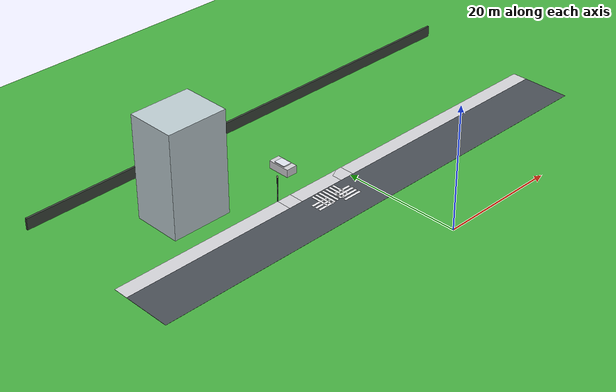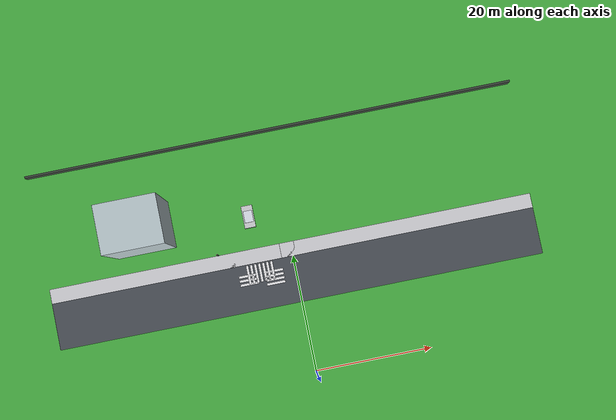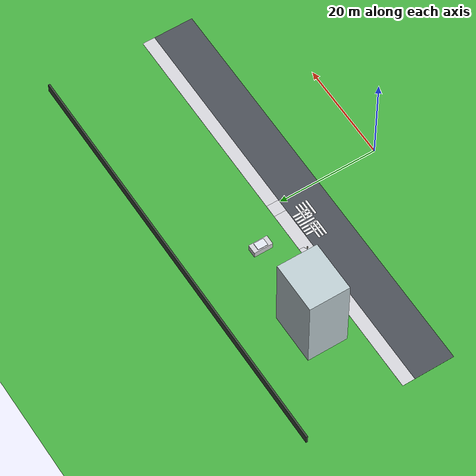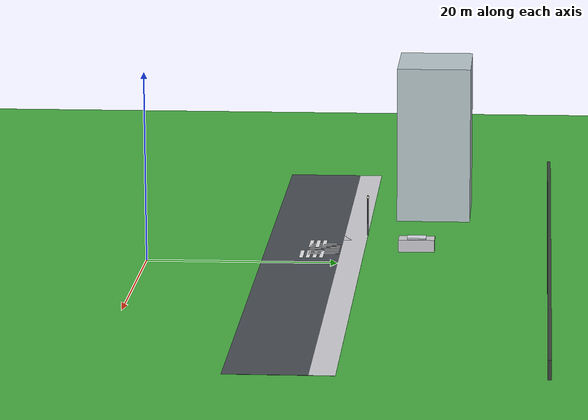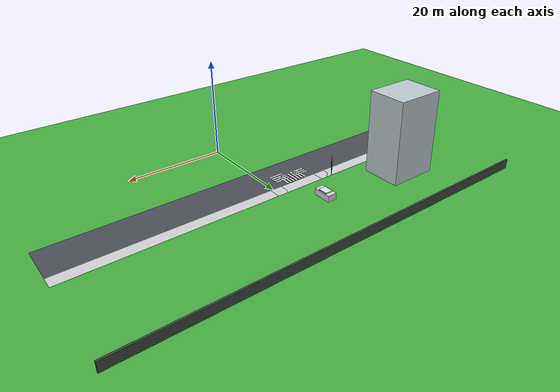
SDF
<sdf version="1.9">
 <world name="city_second">
  <model name="ground_plane">
   <static>true</static>
   <link name="link">
    <collision name="collision">
     <geometry><plane><normal>0 0 1</normal><size>300 300</size></plane></geometry>
    </collision>
    <visual name="visual">
     <geometry><plane><normal>0 0 1</normal><size>300 300</size></plane></geometry>
     <material>
      <ambient>0.28 0.69 0.26 1</ambient>
      <diffuse>0.28 0.69 0.26 1</diffuse>
      <specular>0.03 0.03 0.03 1</specular>
     </material>
    </visual>
   </link>
  </model>
  <model name="road_h_2">
   <static>true</static>
   <pose>0 16.0 0.01 0 0 0.0</pose>
   <link name="link">
    <collision name="collision"><geometry><box><size>84 8.0 0.02</size></box></geometry></collision>
    <visual name="visual">
     <geometry><box><size>84 8.0 0.02</size></box></geometry>
     <material>
      <ambient>0.29 0.31 0.34 1</ambient>
      <diffuse>0.29 0.31 0.34 1</diffuse>
      <specular>0.03 0.03 0.03 1</specular>
     </material>
    </visual>
   </link>
  </model>
  <model name="sidewalk_h_2_north">
   <static>true</static>
   <pose>0 21.25 0.015 0 0 0.0</pose>
   <link name="link">
    <collision name="collision"><geometry><box><size>84 2.5 0.02</size></box></geometry></collision>
    <visual name="visual">
     <geometry><box><size>84 2.5 0.02</size></box></geometry>
     <material>
      <ambient>0.83 0.83 0.85 1</ambient>
      <diffuse>0.83 0.83 0.85 1</diffuse>
      <specular>0.03 0.03 0.03 1</specular>
     </material>
    </visual>
   </link>
  </model>
  <model name="corner_sidewalk_1_2_2">
   <static>true</static>
   <pose>-11.25 21.25 0.015 0 0 0.0</pose>
   <link name="link">
    <collision name="collision"><geometry><box><size>2.5 2.5 0.02</size></box></geometry></collision>
    <visual name="visual">
     <geometry><box><size>2.5 2.5 0.02</size></box></geometry>
     <material>
      <ambient>0.83 0.83 0.85 1</ambient>
      <diffuse>0.83 0.83 0.85 1</diffuse>
      <specular>0.03 0.03 0.03 1</specular>
     </material>
    </visual>
   </link>
  </model>
  <model name="corner_sidewalk_1_2_4">
   <static>true</static>
   <pose>-0.75 21.25 0.015 0 0 0.0</pose>
   <link name="link">
    <collision name="collision"><geometry><box><size>2.5 2.5 0.02</size></box></geometry></collision>
    <visual name="visual">
     <geometry><box><size>2.5 2.5 0.02</size></box></geometry>
     <material>
      <ambient>0.83 0.83 0.85 1</ambient>
      <diffuse>0.83 0.83 0.85 1</diffuse>
      <specular>0.03 0.03 0.03 1</specular>
     </material>
    </visual>
   </link>
  </model>
  <model name="crosswalk_h_1_2_north_1">
   <static>true</static>
   <pose>-8.1 18.25 0.017 0 0 0.0</pose>
   <link name="link">
    <collision name="collision"><geometry><box><size>0.42 3.2 0.01</size></box></geometry></collision>
    <visual name="visual">
     <geometry><box><size>0.42 3.2 0.01</size></box></geometry>
     <material>
      <ambient>0.92 0.92 0.93 1</ambient>
      <diffuse>0.92 0.92 0.93 1</diffuse>
      <specular>0.03 0.03 0.03 1</specular>
     </material>
    </visual>
   </link>
  </model>
  <model name="crosswalk_h_1_2_north_2">
   <static>true</static>
   <pose>-7.3999999999999995 18.25 0.017 0 0 0.0</pose>
   <link name="link">
    <collision name="collision"><geometry><box><size>0.42 3.2 0.01</size></box></geometry></collision>
    <visual name="visual">
     <geometry><box><size>0.42 3.2 0.01</size></box></geometry>
     <material>
      <ambient>0.92 0.92 0.93 1</ambient>
      <diffuse>0.92 0.92 0.93 1</diffuse>
      <specular>0.03 0.03 0.03 1</specular>
     </material>
    </visual>
   </link>
  </model>
  <model name="crosswalk_h_1_2_north_3">
   <static>true</static>
   <pose>-6.699999999999999 18.25 0.017 0 0 0.0</pose>
   <link name="link">
    <collision name="collision"><geometry><box><size>0.42 3.2 0.01</size></box></geometry></collision>
    <visual name="visual">
     <geometry><box><size>0.42 3.2 0.01</size></box></geometry>
     <material>
      <ambient>0.92 0.92 0.93 1</ambient>
      <diffuse>0.92 0.92 0.93 1</diffuse>
      <specular>0.03 0.03 0.03 1</specular>
     </material>
    </visual>
   </link>
  </model>
  <model name="crosswalk_h_1_2_north_4">
   <static>true</static>
   <pose>-6.0 18.25 0.017 0 0 0.0</pose>
   <link name="link">
    <collision name="collision"><geometry><box><size>0.42 3.2 0.01</size></box></geometry></collision>
    <visual name="visual">
     <geometry><box><size>0.42 3.2 0.01</size></box></geometry>
     <material>
      <ambient>0.92 0.92 0.93 1</ambient>
      <diffuse>0.92 0.92 0.93 1</diffuse>
      <specular>0.03 0.03 0.03 1</specular>
     </material>
    </visual>
   </link>
  </model>
  <model name="crosswalk_h_1_2_north_5">
   <static>true</static>
   <pose>-5.3 18.25 0.017 0 0 0.0</pose>
   <link name="link">
    <collision name="collision"><geometry><box><size>0.42 3.2 0.01</size></box></geometry></collision>
    <visual name="visual">
     <geometry><box><size>0.42 3.2 0.01</size></box></geometry>
     <material>
      <ambient>0.92 0.92 0.93 1</ambient>
      <diffuse>0.92 0.92 0.93 1</diffuse>
      <specular>0.03 0.03 0.03 1</specular>
     </material>
    </visual>
   </link>
  </model>
  <model name="crosswalk_h_1_2_north_6">
   <static>true</static>
   <pose>-4.6 18.25 0.017 0 0 0.0</pose>
   <link name="link">
    <collision name="collision"><geometry><box><size>0.42 3.2 0.01</size></box></geometry></collision>
    <visual name="visual">
     <geometry><box><size>0.42 3.2 0.01</size></box></geometry>
     <material>
      <ambient>0.92 0.92 0.93 1</ambient>
      <diffuse>0.92 0.92 0.93 1</diffuse>
      <specular>0.03 0.03 0.03 1</specular>
     </material>
    </visual>
   </link>
  </model>
  <model name="crosswalk_h_1_2_north_7">
   <static>true</static>
   <pose>-3.9000000000000004 18.25 0.017 0 0 0.0</pose>
   <link name="link">
    <collision name="collision"><geometry><box><size>0.42 3.2 0.01</size></box></geometry></collision>
    <visual name="visual">
     <geometry><box><size>0.42 3.2 0.01</size></box></geometry>
     <material>
      <ambient>0.92 0.92 0.93 1</ambient>
      <diffuse>0.92 0.92 0.93 1</diffuse>
      <specular>0.03 0.03 0.03 1</specular>
     </material>
    </visual>
   </link>
  </model>
  <model name="crosswalk_v_1_2_west_5">
   <static>true</static>
   <pose>-8.25 16.7 0.017 0 0 0.0</pose>
   <link name="link">
    <collision name="collision"><geometry><box><size>3.2 0.42 0.01</size></box></geometry></collision>
    <visual name="visual">
     <geometry><box><size>3.2 0.42 0.01</size></box></geometry>
     <material>
      <ambient>0.92 0.92 0.93 1</ambient>
      <diffuse>0.92 0.92 0.93 1</diffuse>
      <specular>0.03 0.03 0.03 1</specular>
     </material>
    </visual>
   </link>
  </model>
  <model name="crosswalk_v_1_2_west_6">
   <static>true</static>
   <pose>-8.25 17.4 0.017 0 0 0.0</pose>
   <link name="link">
    <collision name="collision"><geometry><box><size>3.2 0.42 0.01</size></box></geometry></collision>
    <visual name="visual">
     <geometry><box><size>3.2 0.42 0.01</size></box></geometry>
     <material>
      <ambient>0.92 0.92 0.93 1</ambient>
      <diffuse>0.92 0.92 0.93 1</diffuse>
      <specular>0.03 0.03 0.03 1</specular>
     </material>
    </visual>
   </link>
  </model>
  <model name="crosswalk_v_1_2_west_7">
   <static>true</static>
   <pose>-8.25 18.1 0.017 0 0 0.0</pose>
   <link name="link">
    <collision name="collision"><geometry><box><size>3.2 0.42 0.01</size></box></geometry></collision>
    <visual name="visual">
     <geometry><box><size>3.2 0.42 0.01</size></box></geometry>
     <material>
      <ambient>0.92 0.92 0.93 1</ambient>
      <diffuse>0.92 0.92 0.93 1</diffuse>
      <specular>0.03 0.03 0.03 1</specular>
     </material>
    </visual>
   </link>
  </model>
  <model name="crosswalk_v_1_2_east_4">
   <static>true</static>
   <pose>-3.75 16.0 0.017 0 0 0.0</pose>
   <link name="link">
    <collision name="collision"><geometry><box><size>3.2 0.42 0.01</size></box></geometry></collision>
    <visual name="visual">
     <geometry><box><size>3.2 0.42 0.01</size></box></geometry>
     <material>
      <ambient>0.92 0.92 0.93 1</ambient>
      <diffuse>0.92 0.92 0.93 1</diffuse>
      <specular>0.03 0.03 0.03 1</specular>
     </material>
    </visual>
   </link>
  </model>
  <model name="crosswalk_v_1_2_east_5">
   <static>true</static>
   <pose>-3.75 16.7 0.017 0 0 0.0</pose>
   <link name="link">
    <collision name="collision"><geometry><box><size>3.2 0.42 0.01</size></box></geometry></collision>
    <visual name="visual">
     <geometry><box><size>3.2 0.42 0.01</size></box></geometry>
     <material>
      <ambient>0.92 0.92 0.93 1</ambient>
      <diffuse>0.92 0.92 0.93 1</diffuse>
      <specular>0.03 0.03 0.03 1</specular>
     </material>
    </visual>
   </link>
  </model>
  <model name="crosswalk_v_1_2_east_6">
   <static>true</static>
   <pose>-3.75 17.4 0.017 0 0 0.0</pose>
   <link name="link">
    <collision name="collision"><geometry><box><size>3.2 0.42 0.01</size></box></geometry></collision>
    <visual name="visual">
     <geometry><box><size>3.2 0.42 0.01</size></box></geometry>
     <material>
      <ambient>0.92 0.92 0.93 1</ambient>
      <diffuse>0.92 0.92 0.93 1</diffuse>
      <specular>0.03 0.03 0.03 1</specular>
     </material>
    </visual>
   </link>
  </model>
  <model name="crosswalk_v_1_2_east_7">
   <static>true</static>
   <pose>-3.75 18.1 0.017 0 0 0.0</pose>
   <link name="link">
    <collision name="collision"><geometry><box><size>3.2 0.42 0.01</size></box></geometry></collision>
    <visual name="visual">
     <geometry><box><size>3.2 0.42 0.01</size></box></geometry>
     <material>
      <ambient>0.92 0.92 0.93 1</ambient>
      <diffuse>0.92 0.92 0.93 1</diffuse>
      <specular>0.03 0.03 0.03 1</specular>
     </material>
    </visual>
   </link>
  </model>
  <model name="house_3_1">
   <static>true</static>
   <pose>-24.3 29.3 8.5 0 0 0.0</pose>
   <link name="link">
    <collision name="collision"><geometry><box><size>10 8 17</size></box></geometry></collision>
    <visual name="visual">
     <geometry><box><size>10 8 17</size></box></geometry>
     <material>
      <ambient>0.74 0.8 0.82 1</ambient>
      <diffuse>0.74 0.8 0.82 1</diffuse>
      <specular>0.03 0.03 0.03 1</specular>
     </material>
    </visual>
   </link>
  </model>
  <model name="car_4">
   <static>true</static>
   <pose>-6.2 28.0 0.65 0 0 1.5707963267948966</pose>
   <link name="link">
    <collision name="collision"><geometry><box><size>3.8 1.9 1.3</size></box></geometry></collision>
    <visual name="body">
     <geometry><box><size>3.8 1.9 1.3</size></box></geometry>
     <material>
      <ambient>0.82 0.82 0.84 1</ambient>
      <diffuse>0.82 0.82 0.84 1</diffuse>
      <specular>0.03 0.03 0.03 1</specular>
     </material>
    </visual>
    <visual name="roof">
     <pose>0 0 0.55 0 0 0</pose>
     <geometry><box><size>2.0 1.5 0.5</size></box></geometry>
     <material>
      <ambient>0.88 0.9 0.94 1</ambient>
      <diffuse>0.88 0.9 0.94 1</diffuse>
      <specular>0.03 0.03 0.03 1</specular>
     </material>
    </visual>
   </link>
  </model>
  <model name="lamp_4">
   <static>true</static>
   <pose>-12.5 22.5 2.2 0 0 0</pose>
   <link name="link">
    <collision name="collision">
     <geometry><cylinder><radius>0.08</radius><length>4.4</length></cylinder></geometry>
    </collision>
    <visual name="pole">
     <geometry><cylinder><radius>0.08</radius><length>4.4</length></cylinder></geometry>
     <material>
      <ambient>0.35 0.36 0.38 1</ambient>
      <diffuse>0.35 0.36 0.38 1</diffuse>
      <specular>0.03 0.03 0.03 1</specular>
     </material>
    </visual>
    <visual name="lamp_head">
     <pose>0 0 2.0 0 0 0</pose>
     <geometry><sphere><radius>0.14</radius></sphere></geometry>
     <material>
      <ambient>0.96 0.94 0.78 1</ambient>
      <diffuse>0.96 0.94 0.78 1</diffuse>
      <specular>0.03 0.03 0.03 1</specular>
     </material>
    </visual>
   </link>
  </model>
  <model name="fence_north">
   <static>true</static>
   <pose>0 42.0 0.95 0 0 0.0</pose>
   <link name="link">
    <collision name="collision"><geometry><box><size>84.5 0.35 1.9</size></box></geometry></collision>
    <visual name="visual">
     <geometry><box><size>84.5 0.35 1.9</size></box></geometry>
     <material>
      <ambient>0.23 0.27 0.23 1</ambient>
      <diffuse>0.23 0.27 0.23 1</diffuse>
      <specular>0.03 0.03 0.03 1</specular>
     </material>
    </visual>
   </link>
  </model>
 </world>
</sdf>
